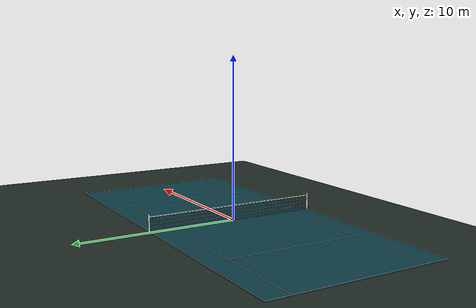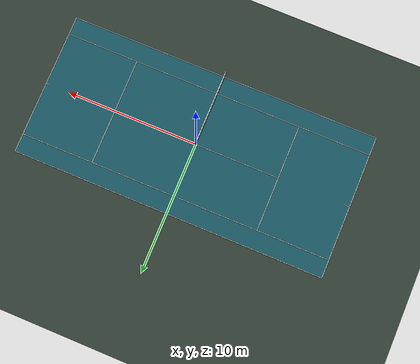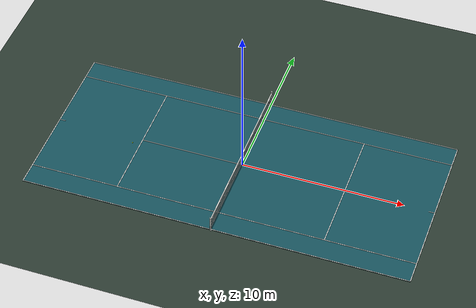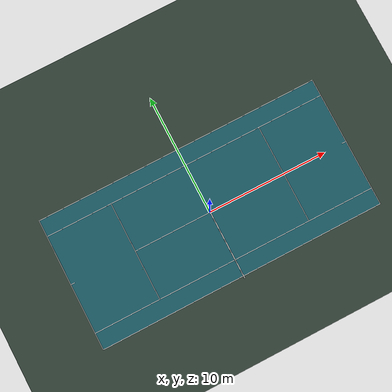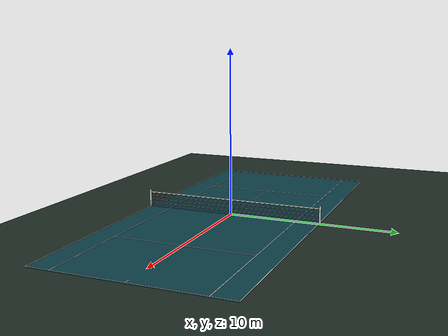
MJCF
<mujoco model="tennis_trajectory_demo">
  <compiler angle="degree" autolimits="true"/>
  <option timestep="0.002" gravity="0 0 -9.81" integrator="RK4" iterations="50" cone="elliptic"/>
  <size njmax="500" nconmax="200"/>

  <visual>
    <global offwidth="1280" offheight="720" azimuth="135" elevation="-28"/>
    <quality shadowsize="4096" offsamples="4"/>
    <map znear="0.02" zfar="80" fogstart="30" fogend="55"/>
    <rgba haze="0.78 0.86 0.92 1"/>
  </visual>

  <statistic center="0 0 0.7" extent="14"/>

  <default>
    <geom condim="3" friction="0.65 0.01 0.0001" solref="0.006 0.155" solimp="0.92 0.98 0.002"/>
    <default class="visual">
      <geom contype="0" conaffinity="0" group="1"/>
    </default>
  </default>

  <asset>
    <texture name="sky" type="skybox" builtin="gradient" rgb1="0.68 0.82 0.92" rgb2="0.96 0.97 0.96" width="512" height="3072"/>
    <texture name="ground_tex" type="2d" builtin="checker" rgb1="0.18 0.24 0.20" rgb2="0.15 0.20 0.17" width="512" height="512"/>
    <material name="ground_mat" texture="ground_tex" texrepeat="8 8" texuniform="true" reflectance="0.05"/>
    <material name="court_mat" rgba="0.08 0.31 0.35 1" specular="0.08" shininess="0.15"/>
    <material name="line_mat" rgba="0.96 0.97 0.94 1" emission="0.05"/>
    <material name="net_mat" rgba="0.08 0.10 0.11 0.34"/>
    <material name="post_mat" rgba="0.82 0.84 0.82 1" specular="0.35" shininess="0.5"/>
    <material name="ball_mat" rgba="0.78 0.92 0.12 1" specular="0.25" shininess="0.4"/>
  </asset>

  <worldbody>
    <light name="key" pos="-6 -5 12" dir="0.35 0.25 -1" diffuse="0.95 0.93 0.88" castshadow="true"/>
    <light name="fill" pos="8 7 8" dir="-0.4 -0.3 -1" diffuse="0.45 0.50 0.55" castshadow="false"/>

    <geom name="surround" type="plane" pos="0 0 -0.035" size="35 25 0.1" material="ground_mat" friction="0.8 0.01 0.0001"/>
    <geom name="court_surface" type="box" pos="0 0 -0.015" size="11.885 5.485 0.015" material="court_mat" friction="0.62 0.015 0.0002"/>

    <!-- ITF court dimensions: 23.77 m x 10.97 m, singles width 8.23 m. -->
    <geom class="visual" name="baseline_near" type="box" pos="-11.86 0 0.004" size="0.025 5.485 0.004" material="line_mat"/>
    <geom class="visual" name="baseline_far" type="box" pos="11.86 0 0.004" size="0.025 5.485 0.004" material="line_mat"/>
    <geom class="visual" name="doubles_side_left" type="box" pos="0 -5.46 0.004" size="11.885 0.025 0.004" material="line_mat"/>
    <geom class="visual" name="doubles_side_right" type="box" pos="0 5.46 0.004" size="11.885 0.025 0.004" material="line_mat"/>
    <geom class="visual" name="singles_side_left" type="box" pos="0 -4.09 0.004" size="11.885 0.025 0.004" material="line_mat"/>
    <geom class="visual" name="singles_side_right" type="box" pos="0 4.09 0.004" size="11.885 0.025 0.004" material="line_mat"/>
    <geom class="visual" name="service_line_near" type="box" pos="-6.40 0 0.004" size="0.025 4.115 0.004" material="line_mat"/>
    <geom class="visual" name="service_line_far" type="box" pos="6.40 0 0.004" size="0.025 4.115 0.004" material="line_mat"/>
    <geom class="visual" name="center_service_line" type="box" pos="0 0 0.004" size="6.40 0.025 0.004" material="line_mat"/>
    <geom class="visual" name="center_mark_near" type="box" pos="-11.68 0 0.004" size="0.18 0.025 0.004" material="line_mat"/>
    <geom class="visual" name="center_mark_far" type="box" pos="11.68 0 0.004" size="0.18 0.025 0.004" material="line_mat"/>

    <!-- The translucent net panel is collidable; the white tape and mesh lines are visual. -->
    <geom name="net_collision" type="box" pos="0 0 0.457" size="0.018 5.485 0.457" material="net_mat" friction="0.25 0.005 0.0001"/>
    <geom class="visual" name="net_tape" type="box" pos="0 0 0.914" size="0.03 5.52 0.025" material="line_mat"/>
    <geom class="visual" name="net_post_left" type="cylinder" pos="0 -5.55 0.535" size="0.045 0.535" material="post_mat"/>
    <geom class="visual" name="net_post_right" type="cylinder" pos="0 5.55 0.535" size="0.045 0.535" material="post_mat"/>
    <geom class="visual" name="net_horizontal_1" type="box" pos="0 0 0.23" size="0.021 5.485 0.006" material="post_mat"/>
    <geom class="visual" name="net_horizontal_2" type="box" pos="0 0 0.46" size="0.021 5.485 0.006" material="post_mat"/>
    <geom class="visual" name="net_horizontal_3" type="box" pos="0 0 0.69" size="0.021 5.485 0.006" material="post_mat"/>

    <body name="tennis_ball" pos="-6.4 -1.5 1.2">
      <freejoint name="ball_freejoint"/>
      <geom name="ball_geom" type="sphere" size="0.0335" mass="0.057" material="ball_mat" friction="0.55 0.02 0.002" solref="0.005 0.155" solimp="0.93 0.99 0.001"/>
      <site name="ball_center" type="sphere" size="0.005" rgba="1 1 1 0.7"/>
    </body>
  </worldbody>
</mujoco>
